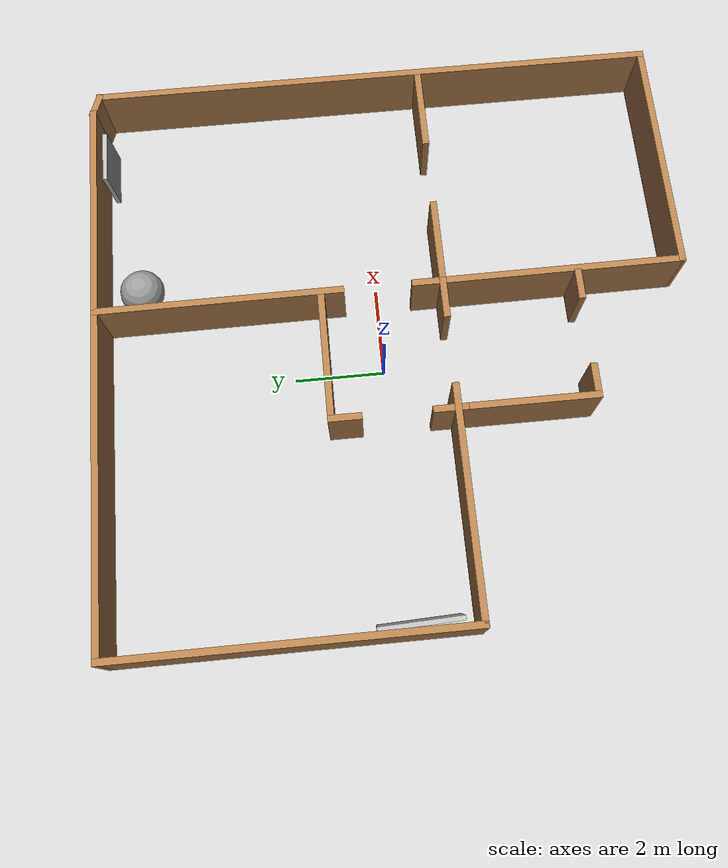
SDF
<sdf version="1.6">
 <world name="default">
  <light name="sun" type="directional">
   <pose>0 0 10 0 -0 0</pose>
   <diffuse>0.8 0.8 0.8 1</diffuse>
   <specular>0.2 0.2 0.2 1</specular>
   <attenuation>
    <range>1000</range>
    <constant>0.9</constant>
    <linear>0.01</linear>
    <quadratic>0.001</quadratic>
   </attenuation>
   <direction>-0.5 0.1 -0.9</direction>
  </light>
  <model name="ground_plane">
   <static>1</static>
   <link name="link">
    <collision name="collision">
     <geometry><plane><normal>0 0 1</normal><size>100 100</size></plane></geometry>
     <surface>
      <contact><collide_bitmask>65535</collide_bitmask></contact>
      <friction><ode><mu>100</mu><mu2>50</mu2></ode></friction>
     </surface>
    </collision>
    <visual name="visual">
     <cast_shadows>0</cast_shadows>
     <geometry><plane><normal>0 0 1</normal><size>100 100</size></plane></geometry>
     <material>
      <script><uri>file://media/materials/scripts/gazebo.material</uri><name>Gazebo/Grey</name></script>
     </material>
    </visual>
   </link>
  </model>
  <gravity>0 0 -9.8</gravity>
  <magnetic_field>6e-06 2.3e-05 -4.2e-05</magnetic_field>
  <atmosphere type="adiabatic"/>
  <physics name="default_physics" default="0" type="ode">
   <max_step_size>0.001</max_step_size>
   <real_time_factor>1</real_time_factor>
   <real_time_update_rate>1000</real_time_update_rate>
  </physics>
  <scene><ambient>0.4 0.4 0.4 1</ambient><background>0.7 0.7 0.7 1</background><shadows>1</shadows></scene>
  <audio><device>default</device></audio>
  <spherical_coordinates>
   <surface_model>EARTH_WGS84</surface_model>
   <latitude_deg>0</latitude_deg>
   <longitude_deg>0</longitude_deg>
   <elevation>0</elevation>
   <heading_deg>0</heading_deg>
  </spherical_coordinates>
  <model name="bikhamis">
   <pose>0.565406 -0.285908 0 0 -0 0</pose>
   <link name="Wall_0">
    <collision name="Wall_0_Collision">
     <geometry><box><size>12.5 0.15 1.5</size></box></geometry>
     <pose>0 0 0.75 0 -0 0</pose>
    </collision>
    <visual name="Wall_0_Visual">
     <pose>0 0 0.75 0 -0 0</pose>
     <geometry><box><size>12.5 0.15 1.5</size></box></geometry>
     <material>
      <script><uri>file://media/materials/scripts/gazebo.material</uri><name>Gazebo/Wood</name></script>
      <ambient>1 1 1 1</ambient>
     </material>
     <meta><layer>0</layer></meta>
    </visual>
    <pose>-0.220371 6.48934 0 0 -0 0</pose>
   </link>
   <link name="Wall_11">
    <collision name="Wall_11_Collision">
     <geometry><box><size>0.595609 0.15 1.5</size></box></geometry>
     <pose>0 0 0.75 0 -0 0</pose>
    </collision>
    <visual name="Wall_11_Visual">
     <pose>0 0 0.75 0 -0 0</pose>
     <geometry><box><size>0.595609 0.15 1.5</size></box></geometry>
     <material>
      <script><uri>file://media/materials/scripts/gazebo.material</uri><name>Gazebo/Wood</name></script>
      <ambient>1 1 1 1</ambient>
     </material>
     <meta><layer>0</layer></meta>
    </visual>
    <pose>6.16463 6.41484 0 0 -0 -0.340911</pose>
   </link>
   <link name="Wall_13">
    <collision name="Wall_13_Collision">
     <geometry><box><size>3 0.15 1.5</size></box></geometry>
     <pose>0 0 0.75 0 -0 0</pose>
    </collision>
    <visual name="Wall_13_Visual">
     <pose>0 0 0.75 0 -0 0</pose>
     <geometry><box><size>3 0.15 1.5</size></box></geometry>
     <material>
      <script><uri>file://media/materials/scripts/gazebo.material</uri><name>Gazebo/Wood</name></script>
      <ambient>1 1 1 1</ambient>
     </material>
     <meta><layer>0</layer></meta>
    </visual>
    <pose>-1.92637 -2.73166 0 0 -0 -1.5708</pose>
   </link>
   <link name="Wall_14">
    <pose>-0.512871 -4.15666 0 0 -0 0</pose>
    <visual name="Wall_14_Visual_0">
     <pose>-1.0989 0 0.75 0 -0 0</pose>
     <geometry><box><size>0.778791 0.15 1.5</size></box></geometry>
     <material>
      <script><uri>file://media/materials/scripts/gazebo.material</uri><name>Gazebo/Wood</name></script>
      <ambient>1 1 1 1</ambient>
     </material>
     <meta><layer>0</layer></meta>
    </visual>
    <collision name="Wall_14_Collision_0">
     <geometry><box><size>0.778791 0.15 1.5</size></box></geometry>
     <pose>-1.0989 0 0.75 0 -0 0</pose>
    </collision>
    <visual name="Wall_14_Visual_1">
     <pose>1.1394 0 0.75 0 -0 0</pose>
     <geometry><box><size>0.697793 0.15 1.5</size></box></geometry>
     <material>
      <script><uri>file://media/materials/scripts/gazebo.material</uri><name>Gazebo/Wood</name></script>
      <ambient>1 1 1 1</ambient>
     </material>
     <meta><layer>0</layer></meta>
    </visual>
    <collision name="Wall_14_Collision_1">
     <geometry><box><size>0.697793 0.15 1.5</size></box></geometry>
     <pose>1.1394 0 0.75 0 -0 0</pose>
    </collision>
   </link>
   <link name="Wall_16">
    <pose>-1.92637 0.11834 0 0 -0 1.5708</pose>
    <visual name="Wall_16_Visual_0">
     <pose>-1.11988 0 0.75 0 -0 0</pose>
     <geometry><box><size>0.760247 0.15 1.5</size></box></geometry>
     <material>
      <script><uri>file://media/materials/scripts/gazebo.material</uri><name>Gazebo/Wood</name></script>
      <ambient>1 1 1 1</ambient>
     </material>
     <meta><layer>0</layer></meta>
    </visual>
    <collision name="Wall_16_Collision_0">
     <geometry><box><size>0.760247 0.15 1.5</size></box></geometry>
     <pose>-1.11988 0 0.75 0 -0 0</pose>
    </collision>
    <visual name="Wall_16_Visual_1">
     <pose>1.13012 0 0.75 0 -0 0</pose>
     <geometry><box><size>0.739753 0.15 1.5</size></box></geometry>
     <material>
      <script><uri>file://media/materials/scripts/gazebo.material</uri><name>Gazebo/Wood</name></script>
      <ambient>1 1 1 1</ambient>
     </material>
     <meta><layer>0</layer></meta>
    </visual>
    <collision name="Wall_16_Collision_1">
     <geometry><box><size>0.739753 0.15 1.5</size></box></geometry>
     <pose>1.13012 0 0.75 0 -0 0</pose>
    </collision>
   </link>
   <link name="Wall_17">
    <collision name="Wall_17_Collision">
     <geometry><box><size>3 0.15 1.5</size></box></geometry>
     <pose>0 0 0.75 0 -0 0</pose>
    </collision>
    <visual name="Wall_17_Visual">
     <pose>0 0 0.75 0 -0 0</pose>
     <geometry><box><size>3 0.15 1.5</size></box></geometry>
     <material>
      <script><uri>file://media/materials/scripts/gazebo.material</uri><name>Gazebo/Wood</name></script>
      <ambient>1 1 1 1</ambient>
     </material>
     <meta><layer>0</layer></meta>
    </visual>
    <pose>-0.501371 1.54334 0 0 -0 0</pose>
   </link>
   <link name="Wall_19">
    <pose>3.66463 -1.15966 0 0 -0 0</pose>
    <visual name="Wall_19_Visual_0">
     <pose>-1.74502 0 0.75 0 -0 0</pose>
     <geometry><box><size>2.00996 0.15 1.5</size></box></geometry>
     <material>
      <script><uri>file://media/materials/scripts/gazebo.material</uri><name>Gazebo/Wood</name></script>
      <ambient>1 1 1 1</ambient>
     </material>
     <meta><layer>0</layer></meta>
    </visual>
    <collision name="Wall_19_Collision_0">
     <geometry><box><size>2.00996 0.15 1.5</size></box></geometry>
     <pose>-1.74502 0 0.75 0 -0 0</pose>
    </collision>
    <visual name="Wall_19_Visual_1">
     <pose>1.75498 0 0.75 0 -0 0</pose>
     <geometry><box><size>1.99004 0.15 1.5</size></box></geometry>
     <material>
      <script><uri>file://media/materials/scripts/gazebo.material</uri><name>Gazebo/Wood</name></script>
      <ambient>1 1 1 1</ambient>
     </material>
     <meta><layer>0</layer></meta>
    </visual>
    <collision name="Wall_19_Collision_1">
     <geometry><box><size>1.99004 0.15 1.5</size></box></geometry>
     <pose>1.75498 0 0.75 0 -0 0</pose>
    </collision>
   </link>
   <link name="Wall_2">
    <collision name="Wall_2_Collision">
     <geometry><box><size>7.79931 0.15 1.5</size></box></geometry>
     <pose>0 0 0.75 0 -0 0</pose>
    </collision>
    <visual name="Wall_2_Visual">
     <pose>0 0 0.75 0 -0 0</pose>
     <geometry><box><size>7.79931 0.15 1.5</size></box></geometry>
     <material>
      <script><uri>file://media/materials/scripts/gazebo.material</uri><name>Gazebo/Wood</name></script>
      <ambient>1 1 1 1</ambient>
     </material>
     <meta><layer>0</layer></meta>
    </visual>
    <pose>-6.39537 2.66484 0 0 -0 -1.5708</pose>
   </link>
   <link name="Wall_3">
    <pose>-2.70287 -1.15966 0 0 -0 0</pose>
    <visual name="Wall_3_Visual_0">
     <pose>-1.22153 0 0.75 0 -0 0</pose>
     <geometry><box><size>5.09194 0.15 1.5</size></box></geometry>
     <material>
      <script><uri>file://media/materials/scripts/gazebo.material</uri><name>Gazebo/Wood</name></script>
      <ambient>1 1 1 1</ambient>
     </material>
     <meta><layer>0</layer></meta>
    </visual>
    <collision name="Wall_3_Collision_0">
     <geometry><box><size>5.09194 0.15 1.5</size></box></geometry>
     <pose>-1.22153 0 0.75 0 -0 0</pose>
    </collision>
    <visual name="Wall_3_Visual_1">
     <pose>3.29597 0 0.75 0 -0 0</pose>
     <geometry><box><size>0.943056 0.15 1.5</size></box></geometry>
     <material>
      <script><uri>file://media/materials/scripts/gazebo.material</uri><name>Gazebo/Wood</name></script>
      <ambient>1 1 1 1</ambient>
     </material>
     <meta><layer>0</layer></meta>
    </visual>
    <collision name="Wall_3_Collision_1">
     <geometry><box><size>0.943056 0.15 1.5</size></box></geometry>
     <pose>3.29597 0 0.75 0 -0 0</pose>
    </collision>
   </link>
   <link name="Wall_5">
    <pose>0.972129 2.66484 0 0 -0 1.57537</pose>
    <visual name="Wall_5_Visual_0">
     <pose>-3.51981 0 0.75 0 -0 0</pose>
     <geometry><box><size>0.759697 0.15 1.5</size></box></geometry>
     <material>
      <script><uri>file://media/materials/scripts/gazebo.material</uri><name>Gazebo/Wood</name></script>
      <ambient>1 1 1 1</ambient>
     </material>
     <meta><layer>0</layer></meta>
    </visual>
    <collision name="Wall_5_Collision_0">
     <geometry><box><size>0.759697 0.15 1.5</size></box></geometry>
     <pose>-3.51981 0 0.75 0 -0 0</pose>
    </collision>
    <visual name="Wall_5_Visual_1">
     <pose>1.12985 0 0.75 0 -0 0</pose>
     <geometry><box><size>5.53961 0.15 1.5</size></box></geometry>
     <material>
      <script><uri>file://media/materials/scripts/gazebo.material</uri><name>Gazebo/Wood</name></script>
      <ambient>1 1 1 1</ambient>
     </material>
     <meta><layer>0</layer></meta>
    </visual>
    <collision name="Wall_5_Collision_1">
     <geometry><box><size>5.53961 0.15 1.5</size></box></geometry>
     <pose>1.12985 0 0.75 0 -0 0</pose>
    </collision>
   </link>
   <link name="Wall_7">
    <collision name="Wall_7_Collision">
     <geometry><box><size>5.5 0.15 1.5</size></box></geometry>
     <pose>0 0 0.75 0 -0 0</pose>
    </collision>
    <visual name="Wall_7_Visual">
     <pose>0 0 0.75 0 -0 0</pose>
     <geometry><box><size>5.5 0.15 1.5</size></box></geometry>
     <material>
      <script><uri>file://media/materials/scripts/gazebo.material</uri><name>Gazebo/Wood</name></script>
      <ambient>1 1 1 1</ambient>
     </material>
     <meta><layer>0</layer></meta>
    </visual>
    <pose>1.00713 -3.83466 0 0 -0 -1.56425</pose>
   </link>
   <link name="Wall_8">
    <collision name="Wall_8_Collision">
     <geometry><box><size>5.5 0.15 1.5</size></box></geometry>
     <pose>0 0 0.75 0 -0 0</pose>
    </collision>
    <visual name="Wall_8_Visual">
     <pose>0 0 0.75 0 -0 0</pose>
     <geometry><box><size>5.5 0.15 1.5</size></box></geometry>
     <material>
      <script><uri>file://media/materials/scripts/gazebo.material</uri><name>Gazebo/Wood</name></script>
      <ambient>1 1 1 1</ambient>
     </material>
     <meta><layer>0</layer></meta>
    </visual>
    <pose>3.69963 -6.50966 0 0 -0 0</pose>
   </link>
   <link name="Wall_9">
    <collision name="Wall_9_Collision">
     <geometry><box><size>13 0.15 1.5</size></box></geometry>
     <pose>0 0 0.75 0 -0 0</pose>
    </collision>
    <visual name="Wall_9_Visual">
     <pose>0 0 0.75 0 -0 0</pose>
     <geometry><box><size>13 0.15 1.5</size></box></geometry>
     <material>
      <script><uri>file://media/materials/scripts/gazebo.material</uri><name>Gazebo/Wood</name></script>
      <ambient>1 1 1 1</ambient>
     </material>
     <meta><layer>0</layer></meta>
    </visual>
    <pose>6.37463 -0.08466 0 0 -0 1.5708</pose>
   </link>
   <static>1</static>
  </model>
  <model name="unit_sphere">
   <pose>2.31399 5.33426 0.5 0 -0 0</pose>
   <link name="link">
    <inertial>
     <mass>1</mass>
     <inertia><ixx>0.1</ixx><ixy>0</ixy><ixz>0</ixz><iyy>0.1</iyy><iyz>0</iyz><izz>0.1</izz></inertia>
    </inertial>
    <collision name="collision"><geometry><sphere><radius>0.5</radius></sphere></geometry></collision>
    <visual name="visual">
     <geometry><sphere><radius>0.5</radius></sphere></geometry>
     <material>
      <script><name>Gazebo/Grey</name><uri>file://media/materials/scripts/gazebo.material</uri></script>
     </material>
    </visual>
   </link>
  </model>
  <model name="morgan_freeman">
   <link name="link">
    <inertial>
     <pose>0 -0.1 0.95 0 -0 0</pose>
     <mass>0.0001</mass>
     <inertia><ixx>0.01</ixx><ixy>0</ixy><ixz>0</ixz><iyy>0.01</iyy><iyz>0</iyz><izz>0.01</izz></inertia>
    </inertial>
    <collision name="person">
     <pose>0 0 0.5 0 -0 1.57</pose>
     <geometry><mesh><uri>model://morgan_freeman/meshes/morgan.dae</uri></mesh></geometry>
    </collision>
    <visual name="visual">
     <pose>0 0 0.5 0 -0 1.57</pose>
     <geometry><mesh><uri>model://morgan_freeman/meshes/morgan.dae</uri></mesh></geometry>
    </visual>
   </link>
   <pose>-5.53421 -0.205087 0.10543 0.124355 -9.9e-05 -1.53128</pose>
  </model>
  <model name="bill_gates">
   <link name="link">
    <inertial>
     <pose>0 -0.1 0.95 0 -0 0</pose>
     <mass>0.0001</mass>
     <inertia><ixx>0.01</ixx><ixy>0</ixy><ixz>0</ixz><iyy>0.01</iyy><iyz>0</iyz><izz>0.01</izz></inertia>
    </inertial>
    <collision name="person">
     <pose>0 0 0.5 0 -0 1.57</pose>
     <geometry><mesh><uri>model://bill_gates/meshes/gates.dae</uri></mesh></geometry>
    </collision>
    <visual name="visual">
     <pose>0 0 0.5 0 -0 1.57</pose>
     <geometry><mesh><uri>model://bill_gates/meshes/gates.dae</uri></mesh></geometry>
    </visual>
   </link>
   <pose>5.52599 5.95825 0.104107 0.047985 0.003018 -3.14141</pose>
  </model>
  <light name="user_point_light_0" type="point">
   <pose>-4.87263 -0.013336 1 0 -0 0</pose>
   <diffuse>0.5 0.5 0.5 1</diffuse>
   <specular>0.1 0.1 0.1 1</specular>
   <attenuation>
    <range>20</range>
    <constant>0.5</constant>
    <linear>0.01</linear>
    <quadratic>0.001</quadratic>
   </attenuation>
   <cast_shadows>0</cast_shadows>
   <direction>0 0 -1</direction>
  </light>
  <light name="user_point_light_1" type="point">
   <pose>-4.87708 -0.013011 1 0 -0 0</pose>
   <diffuse>0.5 0.5 0.5 1</diffuse>
   <specular>0.1 0.1 0.1 1</specular>
   <attenuation>
    <range>20</range>
    <constant>0.5</constant>
    <linear>0.01</linear>
    <quadratic>0.001</quadratic>
   </attenuation>
   <cast_shadows>0</cast_shadows>
   <direction>0 0 -1</direction>
  </light>
  <light name="user_point_light_2" type="point">
   <pose>-4.8748 -0.032465 1 0 -0 0</pose>
   <diffuse>0.5 0.5 0.5 1</diffuse>
   <specular>0.1 0.1 0.1 1</specular>
   <attenuation>
    <range>20</range>
    <constant>0.5</constant>
    <linear>0.01</linear>
    <quadratic>0.001</quadratic>
   </attenuation>
   <cast_shadows>0</cast_shadows>
   <direction>0 0 -1</direction>
  </light>
  <light name="user_point_light_3" type="point">
   <pose>-5.14699 -0.39509 1 0 -0 0</pose>
   <diffuse>0.5 0.5 0.5 1</diffuse>
   <specular>0.1 0.1 0.1 1</specular>
   <attenuation>
    <range>20</range>
    <constant>0.5</constant>
    <linear>0.01</linear>
    <quadratic>0.001</quadratic>
   </attenuation>
   <cast_shadows>0</cast_shadows>
   <direction>0 0 -1</direction>
  </light>
  <light name="user_point_light_4" type="point">
   <pose>-4.62089 -0.213533 1 0 -0 0</pose>
   <diffuse>0.5 0.5 0.5 1</diffuse>
   <specular>0.1 0.1 0.1 1</specular>
   <attenuation>
    <range>20</range>
    <constant>0.5</constant>
    <linear>0.01</linear>
    <quadratic>0.001</quadratic>
   </attenuation>
   <cast_shadows>0</cast_shadows>
   <direction>0 0 -1</direction>
  </light>
  <light name="user_point_light_5" type="point">
   <pose>-5.07864 -0.395526 1 0 -0 0</pose>
   <diffuse>0.5 0.5 0.5 1</diffuse>
   <specular>0.1 0.1 0.1 1</specular>
   <attenuation>
    <range>20</range>
    <constant>0.5</constant>
    <linear>0.01</linear>
    <quadratic>0.001</quadratic>
   </attenuation>
   <cast_shadows>0</cast_shadows>
   <direction>0 0 -1</direction>
  </light>
  <light name="user_point_light_6" type="point">
   <pose>5.42448 5.32383 1 0 -0 0</pose>
   <diffuse>0.5 0.5 0.5 1</diffuse>
   <specular>0.1 0.1 0.1 1</specular>
   <attenuation>
    <range>20</range>
    <constant>0.5</constant>
    <linear>0.01</linear>
    <quadratic>0.001</quadratic>
   </attenuation>
   <cast_shadows>0</cast_shadows>
   <direction>0 0 -1</direction>
  </light>
  <light name="user_point_light_7" type="point">
   <pose>5.43665 5.30132 1 0 -0 0</pose>
   <diffuse>0.5 0.5 0.5 1</diffuse>
   <specular>0.1 0.1 0.1 1</specular>
   <attenuation>
    <range>20</range>
    <constant>0.5</constant>
    <linear>0.01</linear>
    <quadratic>0.001</quadratic>
   </attenuation>
   <cast_shadows>0</cast_shadows>
   <direction>0 0 -1</direction>
  </light>
  <light name="user_point_light_8" type="point">
   <pose>5.41707 5.27595 1 0 -0 0</pose>
   <diffuse>0.5 0.5 0.5 1</diffuse>
   <specular>0.1 0.1 0.1 1</specular>
   <attenuation>
    <range>20</range>
    <constant>0.5</constant>
    <linear>0.01</linear>
    <quadratic>0.001</quadratic>
   </attenuation>
   <cast_shadows>0</cast_shadows>
   <direction>0 0 -1</direction>
  </light>
  <light name="user_point_light_9" type="point">
   <pose>5.14522 5.19571 1 0 -0 0</pose>
   <diffuse>0.5 0.5 0.5 1</diffuse>
   <specular>0.1 0.1 0.1 1</specular>
   <attenuation>
    <range>20</range>
    <constant>0.5</constant>
    <linear>0.01</linear>
    <quadratic>0.001</quadratic>
   </attenuation>
   <cast_shadows>0</cast_shadows>
   <direction>0 0 -1</direction>
  </light>
  <light name="user_point_light_10" type="point">
   <pose>5.60379 5.71574 1 0 -0 0</pose>
   <diffuse>0.5 0.5 0.5 1</diffuse>
   <specular>0.1 0.1 0.1 1</specular>
   <attenuation>
    <range>20</range>
    <constant>0.5</constant>
    <linear>0.01</linear>
    <quadratic>0.001</quadratic>
   </attenuation>
   <cast_shadows>0</cast_shadows>
   <direction>0 0 -1</direction>
  </light>
  <light name="user_point_light_11" type="point">
   <pose>5.60071 5.6571 1 0 -0 0</pose>
   <diffuse>0.5 0.5 0.5 1</diffuse>
   <specular>0.1 0.1 0.1 1</specular>
   <attenuation>
    <range>20</range>
    <constant>0.5</constant>
    <linear>0.01</linear>
    <quadratic>0.001</quadratic>
   </attenuation>
   <cast_shadows>0</cast_shadows>
   <direction>0 0 -1</direction>
  </light>
 </world>
</sdf>
